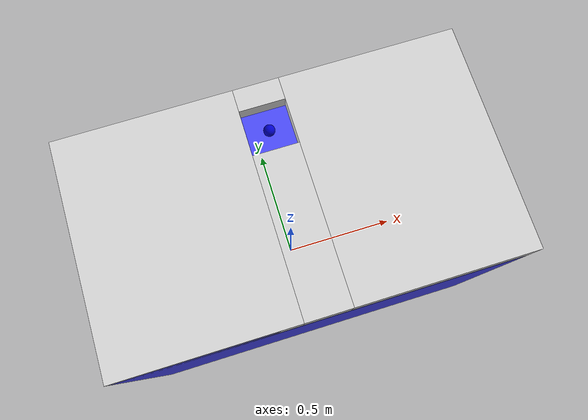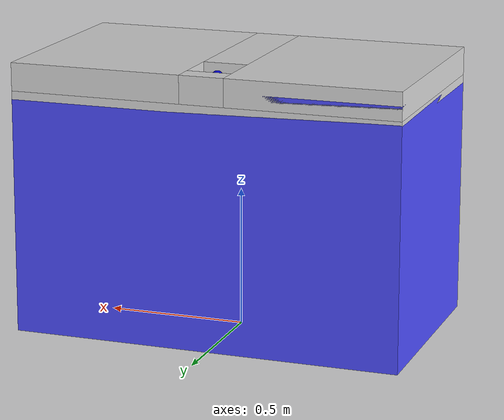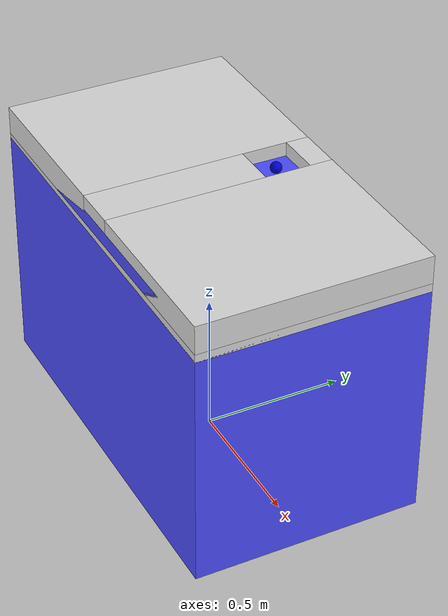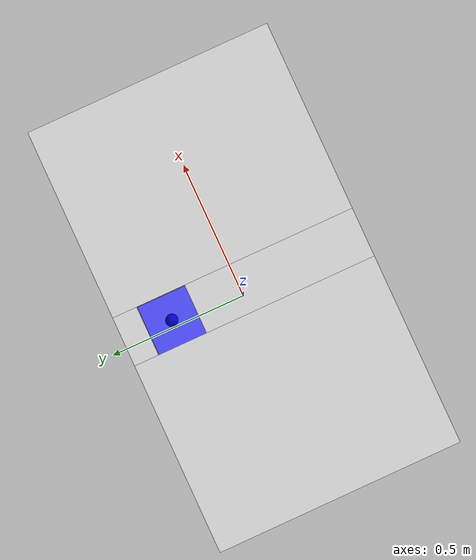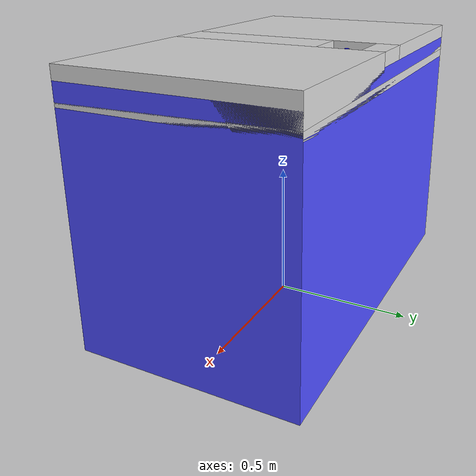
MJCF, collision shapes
<mujoco>
    <asset>
        <texture name="T_table" type="cube" file="../textures/wood2.png"/>

        <material name="table_wood" texuniform="false" texture="T_table" shininess=".3" specular="0.5"/>
        <material name="table_col" rgba="0.3 0.3 1.0 0.5" shininess="0" specular="0"/>
        <material name="cmwhite" rgba=".85 .85 .85 1" shininess="1" reflectance=".7" specular=".5"/>

        <mesh file="../objects/meshes/table/tablebody.stl" name="tablebody" scale="1 1 1"/>
        <mesh file="../objects/meshes/table/tabletop.stl" name="tabletop" scale="1 1 1"/>
    </asset>

    <worldbody>
        <body name="tablelink" pos="0 0 .937">
            <geom material="cmwhite" group="1" pos="0 -0.12 0" size="0.08 0.28 0.05" type="box" conaffinity="0" contype="0"/>
            <geom material="cmwhite" group="1" pos="-0.39 0 0" size="0.31 0.4 0.05" type="box" conaffinity="0" contype="0"/>
            <geom material="cmwhite" group="1" pos="0.39 0 0" size="0.31 0.4 0.05" type="box" conaffinity="0" contype="0"/>
            <geom material="cmwhite" group="1" pos="0 0.36 0" size="0.08 0.04 0.05" type="box" conaffinity="0" contype="0"/>
            <geom material="cmwhite" group="1" pos="0 0 -.065" size="0.7 0.4 .015" type="box" conaffinity="0" contype="0"/>
            <geom material="cmwhite" group="1" mesh="tablebody" pos="0 0 -0.65" type="mesh" conaffinity="0" contype="0"/>
            <geom material="table_col" group="4" pos="0 0 -0.46" size="0.7 0.4 0.46" type="box" conaffinity="1" contype="0"/> <!-- elevates floor of the hole -->
            <geom material="table_col" group="4" pos="0 0 -0.483" size="0.69 0.38 0.43" type="box" conaffinity="1" contype="0"/>
            <geom material="table_col" group="4" pos="0 -0.12 0" size="0.08 0.28 0.05" type="box" conaffinity="1" contype="0"/>
            <geom material="table_col" group="4" pos="-0.39 0 0" size="0.31 0.4 0.05" type="box" conaffinity="1" contype="0"/>
            <geom material="table_col" group="4" pos="0.39 0 0" size="0.31 0.4 0.05" type="box" conaffinity="1" contype="0"/>
            <geom material="table_col" group="4" pos="0 0.36 0" size="0.08 0.04 0.05" type="box" conaffinity="1" contype="0"/>
            <site name="goal" pos="0. 0.24 0.02" size="0.02" rgba="0 0 0.8 1"/>
        </body>
    </worldbody>
</mujoco>
